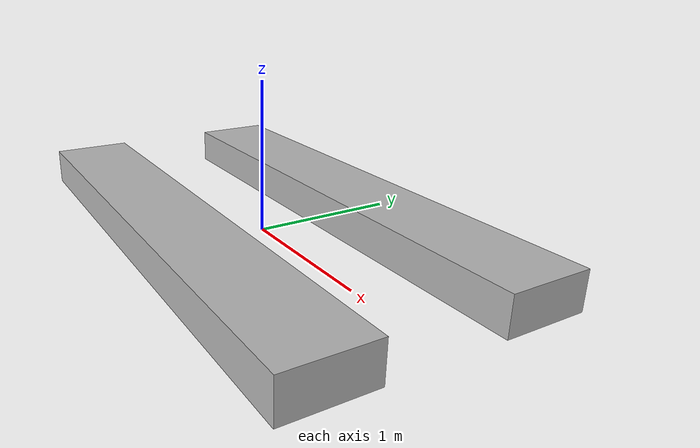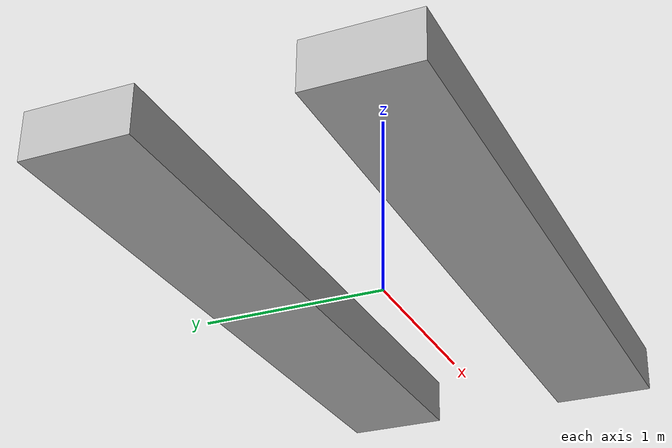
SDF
<?xml version="1.0"?>
<sdf version="1.9">
  <model name="vehicle-c-azimuth">
    <pose>0 0 0.02 0 0 0</pose>
    <link name="base_link">
      <inertial>
        <mass>309.5</mass>
        <inertia>
          <ixx>196.6</ixx>
          <iyy>240</iyy>
          <izz>240</izz>
          <ixy>0</ixy>
          <ixz>0</ixz>
          <iyz>0</iyz>
        </inertia>
        <fluid_added_mass>
          <xx>9.958991485466719</xx>
          <yy>590.5509112680145</yy>
          <zz>620.6460827895884</zz>
          <pp>240.82007040992568</pp>
          <qq>170.71350660502264</qq>
          <rr>517.9371726415533</rr>
        </fluid_added_mass>
      </inertial>
      <collision name="buoyant_hull">
        <pose>0 0 0.032323232 0 0 0</pose>
        <geometry>
          <box>
            <size>3.5 1.98 0.045238095</size>
          </box>
        </geometry>
      </collision>
      <visual name="port_hull">
        <pose>0 -0.65 0.09 0 0 0</pose>
        <geometry>
          <box>
            <size>3.5 0.55 0.25</size>
          </box>
        </geometry>
      </visual>
      <visual name="starboard_hull">
        <pose>0 0.65 0.09 0 0 0</pose>
        <geometry>
          <box>
            <size>3.5 0.55 0.25</size>
          </box>
        </geometry>
      </visual>
    </link>
    <link name="port_pod">
      <pose>-1.5 0.81 -0.18 0 0 0</pose>
      <inertial>
        <mass>1</mass>
        <inertia>
          <ixx>.002</ixx>
          <iyy>.002</iyy>
          <izz>.002</izz>
        </inertia>
      </inertial>
    </link>
    <joint name="port_azimuth_joint" type="revolute">
      <parent>base_link</parent>
      <child>port_pod</child>
      <axis>
        <xyz>0 0 1</xyz>
        <limit>
          <lower>-3.141592654</lower>
          <upper>3.141592654</upper>
          <effort>1000</effort>
          <velocity>.523598776</velocity>
        </limit>
      </axis>
    </joint>
    <link name="port_propeller">
      <pose relative_to="port_pod">0 0 0 0 0 0</pose>
      <inertial>
        <mass>1</mass>
        <inertia>
          <ixx>.002</ixx>
          <iyy>.002</iyy>
          <izz>.002</izz>
        </inertia>
      </inertial>
    </link>
    <joint name="port_propeller_joint" type="revolute">
      <parent>port_pod</parent>
      <child>port_propeller</child>
      <axis>
        <xyz>1 0 0</xyz>
      </axis>
    </joint>
    <link name="starboard_pod">
      <pose>-1.5 -0.81 -0.18 0 0 0</pose>
      <inertial>
        <mass>1</mass>
        <inertia>
          <ixx>.002</ixx>
          <iyy>.002</iyy>
          <izz>.002</izz>
        </inertia>
      </inertial>
    </link>
    <joint name="starboard_azimuth_joint" type="revolute">
      <parent>base_link</parent>
      <child>starboard_pod</child>
      <axis>
        <xyz>0 0 1</xyz>
        <limit>
          <lower>-3.141592654</lower>
          <upper>3.141592654</upper>
          <effort>1000</effort>
          <velocity>.523598776</velocity>
        </limit>
      </axis>
    </joint>
    <link name="starboard_propeller">
      <pose relative_to="starboard_pod">0 0 0 0 0 0</pose>
      <inertial>
        <mass>1</mass>
        <inertia>
          <ixx>.002</ixx>
          <iyy>.002</iyy>
          <izz>.002</izz>
        </inertia>
      </inertial>
    </link>
    <joint name="starboard_propeller_joint" type="revolute">
      <parent>starboard_pod</parent>
      <child>starboard_propeller</child>
      <axis>
        <xyz>1 0 0</xyz>
      </axis>
    </joint>
    <plugin filename="gz-sim-joint-position-controller-system" name="gz::sim::systems::JointPositionController">
      <joint_name>port_azimuth_joint</joint_name>
      <p_gain>50</p_gain>
      <d_gain>5</d_gain>
      <cmd_max>1000</cmd_max>
      <cmd_min>-1000</cmd_min>
      <topic>/model/vehicle-c-azimuth/joint/port_azimuth_joint/0/cmd_pos</topic>
    </plugin>
    <plugin filename="gz-sim-joint-position-controller-system" name="gz::sim::systems::JointPositionController">
      <joint_name>starboard_azimuth_joint</joint_name>
      <p_gain>50</p_gain>
      <d_gain>5</d_gain>
      <cmd_max>1000</cmd_max>
      <cmd_min>-1000</cmd_min>
      <topic>/model/vehicle-c-azimuth/joint/starboard_azimuth_joint/0/cmd_pos</topic>
    </plugin>
    <plugin filename="gz-sim-thruster-system" name="gz::sim::systems::Thruster">
      <namespace>vehicle-c-azimuth</namespace>
      <joint_name>port_propeller_joint</joint_name>
      <use_angvel_cmd>false</use_angvel_cmd>
      <thrust_coefficient>.004422</thrust_coefficient>
      <fluid_density>1000</fluid_density>
      <propeller_diameter>.2</propeller_diameter>
      <velocity_control>true</velocity_control>
      <min_thrust_cmd>-670.2530375080305</min_thrust_cmd>
      <max_thrust_cmd>1340.506075016061</max_thrust_cmd>
    </plugin>
    <plugin filename="gz-sim-thruster-system" name="gz::sim::systems::Thruster">
      <namespace>vehicle-c-azimuth</namespace>
      <joint_name>starboard_propeller_joint</joint_name>
      <use_angvel_cmd>false</use_angvel_cmd>
      <thrust_coefficient>.004422</thrust_coefficient>
      <fluid_density>1000</fluid_density>
      <propeller_diameter>.2</propeller_diameter>
      <velocity_control>true</velocity_control>
      <min_thrust_cmd>-670.2530375080305</min_thrust_cmd>
      <max_thrust_cmd>1340.506075016061</max_thrust_cmd>
    </plugin>
    <plugin filename="gz-sim-hydrodynamics-system" name="gz::sim::systems::Hydrodynamics">
      <link_name>base_link</link_name>
      <xU>-65.71908036060898</xU>
      <yV>-135.80573028103962</yV>
      <zW>-666.9212886899945</zW>
      <kP>-10.395444192140156</kP>
      <mQ>-289.3629136636191</mQ>
      <nR>-360.0418660717822</nR>
      <xUabsU>-40</xUabsU>
      <yVabsV>-180</yVabsV>
      <zWabsW>-230</zWabsW>
      <kPabsP>-.006614752497696677</kPabsP>
      <mQabsQ>-360</mQabsQ>
      <nRabsR>-420</nRabsR>
    </plugin>
    <plugin filename="gz-sim-odometry-publisher-system" name="gz::sim::systems::OdometryPublisher">
      <odom_publish_frequency>100</odom_publish_frequency>
      <odom_topic>/model/vehicle-c-azimuth/odometry</odom_topic>
      <dimensions>3</dimensions>
    </plugin>
  </model>
</sdf>
